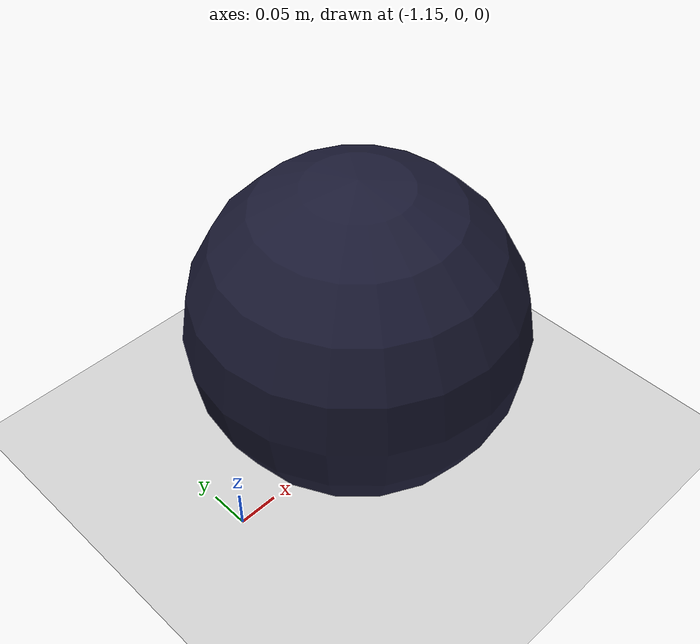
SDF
<?xml version="1.0"?>
<sdf version="1.6">
    <world name="default">

        <include>
            <uri>model://ground_plane</uri>
        </include>

        <include>
            <uri>model://sun</uri>
        </include>

        <model name='vehicle'>
            <static>false</static>
            <pose>0 0 0.325 0 -0 0</pose>
            <link name="base_footprint"/>

            <link name="imu">
                 <gravity>true</gravity>
                 <sensor name="ar_imu" type="imu">
                     <always_on>true</always_on>
                     <update_rate>100</update_rate>
                     <visualize>true</visualize>
                     <imu>
                         <orientation>
                             <x>
                                 <noise type="guassian">
                                     <mean>0.0</mean>
                                     <stddev>2e-3</stddev>
                                 </noise>
                             </x>
                             <y>
                                 <noise type="guassian">
                                     <mean>0.0</mean>
                                     <stddev>2e-3</stddev>
                                 </noise>
                             </y>
                             <z>
                                 <noise type="gaussian">
                                     <mean>0.0</mean>
                                     <stddev>2e-3</stddev>
                                 </noise>
                             </z>
                         </orientation>
                         <angular_velocity>
                            <x>
                              <noise type="gaussian">
                                <mean>0.0</mean>
                                <stddev>2e-4</stddev>
                              </noise>
                            </x>
                            <y>
                              <noise type="gaussian">
                                <mean>0.0</mean>
                                <stddev>2e-4</stddev>
                              </noise>
                            </y>
                            <z>
                              <noise type="gaussian">
                                <mean>0.0</mean>
                                <stddev>2e-4</stddev>
                              </noise>
                            </z>
                          </angular_velocity>
                          <linear_acceleration>
                            <x>
                              <noise type="gaussian">
                                <mean>0.0</mean>
                                <stddev>1.7e-2</stddev>
                              </noise>
                            </x>
                            <y>
                              <noise type="gaussian">
                                <mean>0.0</mean>
                                <stddev>1.7e-2</stddev>
                              </noise>
                            </y>
                            <z>
                              <noise type="gaussian">
                                <mean>0.0</mean>
                                <stddev>1.7e-2</stddev>
                              </noise>
                            </z>
                          </linear_acceleration>
                        </imu>
                        <plugin name="ar_imu" filename="libgazebo_ros_imu_sensor.so">
                            <initial_orientation_as_reference>false</initial_orientation_as_reference>
                            <frame_name>imu_link</frame_name>
                            <ros>
                              <namespace>/imu</namespace>
                              <remapping>~/out:=data</remapping>
                            </ros>
                          </plugin>
                 </sensor>
            </link>

            <link name="gps">
              <sensor name="gps" type="gps">
                <always_on>true</always_on>
                <update_rate>10</update_rate>
                <gps>
                  <position_sensing>
                    <horizontal>
                      <noise type="gaussian">
                        <mean>0.0</mean>
                        <stddev>1e-2</stddev>
                      </noise>
                    </horizontal>
                    <vertical>
                      <noise type="gaussian">
                        <mean>0.0</mean>
                        <stddev>1</stddev>
                      </noise>
                    </vertical>
                  </position_sensing>
                </gps>
                <plugin name="ar_gps" filename="libgazebo_ros_gps_sensor.so">
                  <ros>
                    <remapping>~/out:=gps/fix</remapping>
                  </ros>
                </plugin>
              </sensor>
            </link>

            <joint name="imu_joint" type="fixed">
              <parent>chassis</parent>
              <child>imu</child>
              <pose>0 0 0 0 0 0</pose>
            </joint>

            <joint name="gps_joint" type="fixed">
              <parent>chassis</parent>
              <child>gps</child>
              <pose>0 0 0 0 0 0</pose>
            </joint>

            <link name='caster'>
                <pose>-0.957138 -0 -0.125 0 -0 0</pose>
                <inertial>
                    <mass>1</mass>
                    <inertia>
                        <ixx>0.1</ixx>
                        <ixy>0</ixy>
                        <ixz>0</ixz>
                        <iyy>0.1</iyy>
                        <iyz>0</iyz>
                        <izz>0.1</izz>
                    </inertia>
                </inertial>
                <visual name='visual'>
                    <material>
                        <!-- Wheel material -->
                        <ambient>0.1 0.1 0.1 1</ambient>
                        <diffuse>0.1 0.1 0.2 1</diffuse>
                        <specular>0 0 0 0</specular>
                        <emissive>0 0 0 1</emissive>
                    </material> <!-- End wheel material -->
                    <geometry>
                        <sphere>
                            <radius>0.2</radius>
                        </sphere>
                    </geometry>
                </visual>
                <collision name='collision'>
                    <geometry>
                        <sphere>
                            <radius>0.2</radius>
                        </sphere>
                    </geometry>
                </collision>
            </link>

            <joint name='caster_wheel' type='ball'>
                <parent>chassis</parent>
                <child>caster</child>
            </joint>

        </model>

    </world>
</sdf>
